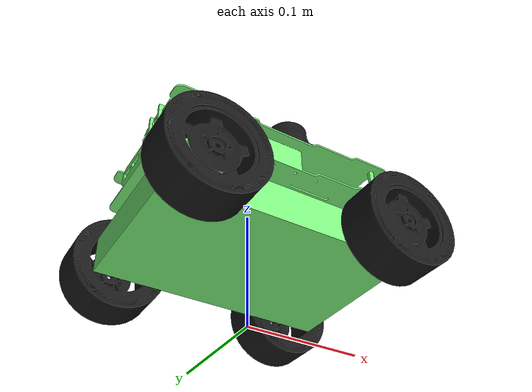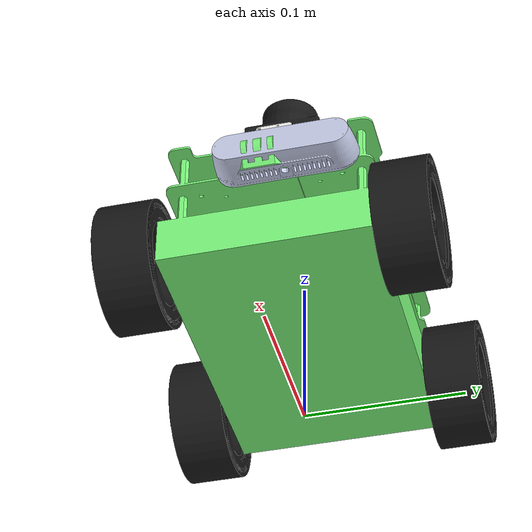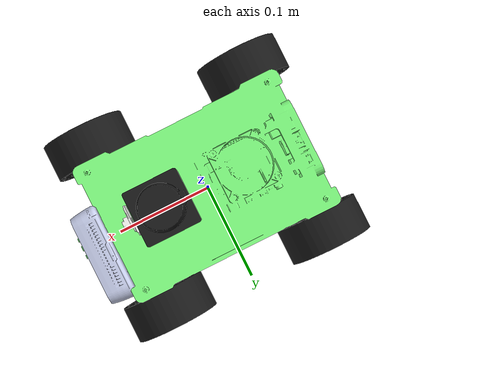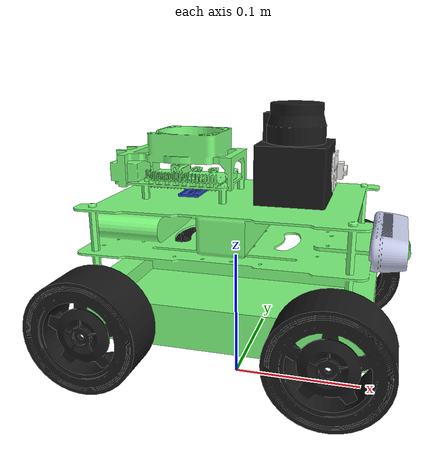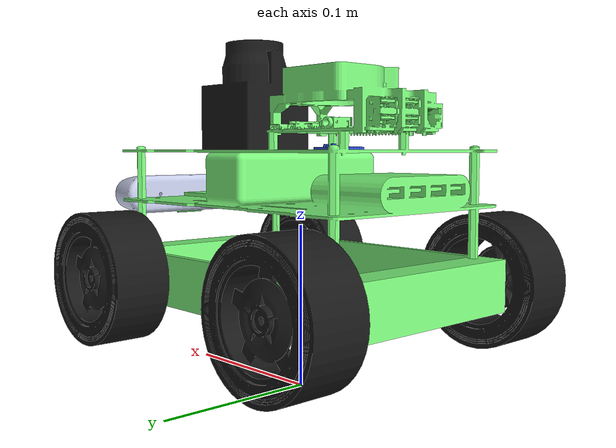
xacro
<?xml version="1.0"?>
<robot xmlns:xacro="http://www.ros.org/wiki/xacro"  name="sucata">

    <xacro:arg name="use_ros2_control" default="true"/>
    <xacro:arg name="sim_mode" default="false"/>

    <xacro:include filename="urdf2.xacro" />

    <xacro:include filename="ros2_control.xacro" />

    <xacro:include filename="lidar.xacro" />

    <xacro:include filename="imu.xacro" />

    <xacro:include filename="depthCamera.xacro" />

    <xacro:include filename="camera.xacro" />

</robot>

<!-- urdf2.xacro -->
<robot
  name="sucata">
  <link name="base_footprint"/>
    <joint name="base_joint" type="fixed">
        <parent link="base_footprint"/>
        <child link="base_link" />
        <origin xyz="0.0014564 0.00032017 0.05608" rpy="0 0 0" />
    </joint>

  <link
    name="base_link">
    <inertial>
      <origin
        xyz="0.0014564 0.00032017 0.02708"
        rpy="0 0 0" />
      <mass
        value="0.29402" />
      <inertia
        ixx="0.00054056"
        ixy="-1.0152E-08"
        ixz="6.2563E-09"
        iyy="0.0012531"
        iyz="1.8536E-10"
        izz="0.0017493" />
    </inertial>
    <visual>
      <origin
        xyz="0 0 0"
        rpy="0 0 0" />
      <geometry>
        <mesh
          filename="package://sucata/meshes/base_link.STL" />
      </geometry>
      <material
        name="verde_claro">
        <color
          rgba="0.5 1.0 0.5 1"/>
      </material>
    </visual>
    <collision>
      <origin
        xyz="0 0 0"
        rpy="0 0 0" />
      <geometry>
        <mesh
          filename="package://sucata/meshes/base_link.STL" />
      </geometry>
    </collision>
  </link>
  <link
    name="rodaFE">
    <inertial>
      <origin
        xyz="4.33708624569817E-13 -0.0116000427495452 3.641063145432E-13"
        rpy="0 0 0" />
      <mass
        value="0.0417534418555908" />
      <inertia
        ixx="2.90386422409949E-05"
        ixy="-9.63351560872344E-17"
        ixz="-1.16755116343788E-16"
        iyy="4.53732000489224E-05"
        iyz="-1.07562778637676E-16"
        izz="2.90386422317585E-05" />
    </inertial>
    <visual>
      <origin
        xyz="0 0 0"
        rpy="0 0 0" />
      <geometry>
        <mesh
          filename="package://sucata/meshes/rodaFE.STL" />
      </geometry>
      <material
        name="preto">
        <color
          rgba="0.1 0.1 0.1 1"/>
      </material>
    </visual>
    <collision>
      <origin
        xyz="0 0 0"
        rpy="0 0 0" />
      <geometry>
        <mesh
          filename="package://sucata/meshes/rodaFE.STL" />
      </geometry>
    </collision>
  </link>
  <joint
    name="roda_FE"
    type="continuous">
    <origin
      xyz="0.0815 0.0973 0.0115"
      rpy="0 0 0" />
    <parent
      link="base_link" />
    <child
      link="rodaFE" />
    <axis
      xyz="0 1 0" />
    <limit
      effort="10"
      velocity="10" />
    <dynamics
      damping="0.1"
      friction="0.1" />
  </joint>
  <link
    name="rodaTE">
    <inertial>
      <origin
        xyz="4.33729441251529E-13 -0.0116000427495452 3.64085497861488E-13"
        rpy="0 0 0" />
      <mass
        value="0.0417534418555908" />
      <inertia
        ixx="2.90386422409949E-05"
        ixy="-9.63357589960055E-17"
        ixz="-1.1675601730821E-16"
        iyy="4.53732000489224E-05"
        iyz="-1.07560295850229E-16"
        izz="2.90386422317585E-05" />
    </inertial>
    <visual>
      <origin
        xyz="0 0 0"
        rpy="0 0 0" />
      <geometry>
        <mesh
          filename="package://sucata/meshes/rodaTE.STL" />
      </geometry>
      <material
        name="preto">
        <color
          rgba="0.1 0.1 0.1 1"/>
      </material>
    </visual>
    <collision>
      <origin
        xyz="0 0 0"
        rpy="0 0 0" />
      <geometry>
        <mesh
          filename="package://sucata/meshes/rodaTE.STL" />
      </geometry>
    </collision>
  </link>
  <joint
    name="roda_TE"
    type="continuous">
    <origin
      xyz="-0.0815 0.0973 0.0115"
      rpy="0 0 0" />
    <parent
      link="base_link" />
    <child
      link="rodaTE" />
    <axis
      xyz="0 1 0" />
    <limit
      effort="10"
      velocity="10" />
    <dynamics
      damping="0.1"
      friction="0.1" />
  </joint>
  <link
    name="rodaFD">
    <inertial>
      <origin
        xyz="-4.33708624569817E-13 0.0116000427495451 3.64003965858117E-13"
        rpy="0 0 0" />
      <mass
        value="0.0417534418555909" />
      <inertia
        ixx="2.90386422409949E-05"
        ixy="-9.63348726903862E-17"
        ixz="1.16761894791001E-16"
        iyy="4.53732000489225E-05"
        iyz="1.07446973492785E-16"
        izz="2.90386422317586E-05" />
    </inertial>
    <visual>
      <origin
        xyz="0 0 0"
        rpy="0 0 0" />
      <geometry>
        <mesh
          filename="package://sucata/meshes/rodaFD.STL" />
      </geometry>
      <material
        name="preto">
        <color
          rgba="0.1 0.1 0.1 1"/>
      </material>
    </visual>
    <collision>
      <origin
        xyz="0 0 0"
        rpy="0 0 0" />
      <geometry>
        <mesh
          filename="package://sucata/meshes/rodaFD.STL" />
      </geometry>
    </collision>
  </link>
  <joint
    name="roda_FD"
    type="continuous">
    <origin
      xyz="0.0814999999999993 -0.0973000000000006 0.0115000000000003"
      rpy="0 0 0" />
    <parent
      link="base_link" />
    <child
      link="rodaFD" />
    <axis
      xyz="0 1 0" />
    <limit
      effort="10"
      velocity="10" />
    <dynamics
      damping="0.1"
      friction="0.1" />
  </joint>
  <link
    name="rodaTD">
    <inertial>
      <origin
        xyz="-4.33729441251529E-13 0.0116000427495451 3.64019578369401E-13"
        rpy="0 0 0" />
      <mass
        value="0.0417534418555909" />
      <inertia
        ixx="2.9038642240995E-05"
        ixy="-9.63350567825533E-17"
        ixz="1.16754828991177E-16"
        iyy="4.53732000489225E-05"
        iyz="1.07446496399349E-16"
        izz="2.90386422317586E-05" />
    </inertial>
    <visual>
      <origin
        xyz="0 0 0"
        rpy="0 0 0" />
      <geometry>
        <mesh
          filename="package://sucata/meshes/rodaTD.STL" />
      </geometry>
      <material
        name="preto">
        <color
          rgba="0.1 0.1 0.1 1"/>
      </material>
    </visual>
    <collision>
      <origin
        xyz="0 0 0"
        rpy="0 0 0" />
      <geometry>
        <mesh
          filename="package://sucata/meshes/rodaTD.STL" />
      </geometry>
    </collision>
  </link>
  <joint
    name="roda_TD"
    type="continuous">
    <origin
      xyz="-0.0815 -0.0973 0.0115"
      rpy="0 0 0" />
    <parent
      link="base_link" />
    <child
      link="rodaTD" />
    <axis
      xyz="0 1 0" />
    <limit
      effort="10"
      velocity="10" />
    <dynamics
      damping="0.1"
      friction="0.1" />
  </joint>
</robot>

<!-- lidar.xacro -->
<robot xmlns:xacro="http://www.ros.org/wiki/xacro" >

    <link
    name="lidar">
    <inertial>
      <origin
        xyz="-9.18606166123576E-05 -4.20244776477841E-11 0.0287457324561401"
        rpy="0 0 0" />
      <mass
        value="0.136132248882766" />
      <inertia
        ixx="6.89403444506094E-05"
        ixy="-1.08297193917411E-13"
        ixz="2.9341823822417E-07"
        iyy="6.92016796483044E-05"
        iyz="1.54668485205633E-13"
        izz="4.93693267811336E-05" />
    </inertial>
    <visual>
      <origin
        xyz="0 0 0"
        rpy="0 0 0" />
      <geometry>
        <mesh
          filename="package://sucata/meshes/lidar_link.STL" />
      </geometry>
      <material name="preto">
        <color rgba="0.1 0.1 0.1 1"/>
      </material>
    </visual>
    <collision>
      <origin
        xyz="0 0 0"
        rpy="0 0 0" />
      <geometry>
        <mesh
          filename="package://sucata/meshes/lidar_link.STL" />
      </geometry>
    </collision>
  </link>
  <joint
    name="lidar_joint"
    type="fixed">
    <origin
      xyz="0.042054 0.00016264 0.09"
      rpy="0 0 0" />
    <parent
      link="base_link" />
    <child
      link="lidar" />
    <axis
      xyz="0 0 0" />
    <limit
      effort="10"
      velocity="10" />
  </joint>

    <gazebo reference="lidar">
        <material>Gazebo/Black</material>

        <sensor name="laser" type="gpu_lidar">
            <pose> 0 0 0.06 0 0 0 </pose>
            <visualize>true</visualize>
            <update_rate>30</update_rate>
            <lidar>
                <scan>
                    <horizontal>
                        <samples>682</samples>
                        <min_angle>-2.094</min_angle>
                        <max_angle>2.094</max_angle>
                    </horizontal>
                </scan>
                <range>
                    <min>0.06</min>
                    <max>10.0</max>
                </range>
            </lidar>

            <topic>scan</topic>
            <gz_frame_id>lidar</gz_frame_id>
        </sensor>
    </gazebo>

</robot>

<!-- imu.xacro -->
<robot xmlns:xacro="http://www.ros.org/wiki/xacro" >

    <link
    name="imu">
    <inertial>
      <origin
        xyz="1.58927283510988E-05 9.32559180236298E-05 0.000878239070510656"
        rpy="0 0 0" />
      <mass
        value="0.000641531141315228" />
      <inertia
        ixx="3.17041200198106E-08"
        ixy="1.24863172344468E-11"
        ixz="-4.01457310722804E-14"
        iyy="1.18309245142538E-08"
        iyz="-1.71325876343045E-15"
        izz="4.3260264266368E-08" />
    </inertial>
    <visual>
      <origin
        xyz="0 0 0"
        rpy="0 0 0" />
      <geometry>
        <mesh
          filename="package://sucata/meshes/imu_link.STL" />
      </geometry>
      <material
        name="">
        <color
          rgba="0.176470588235294 0.290196078431373 0.8 1" />
      </material>
    </visual>
    <collision>
      <origin
        xyz="0 0 0"
        rpy="0 0 0" />
      <geometry>
        <mesh
          filename="package://sucata/meshes/imu_link.STL" />
      </geometry>
    </collision>
  </link>
  <joint
    name="imu_joint"
    type="fixed">
    <origin
      xyz="-0.034597 0 0.09"
      rpy="0 0 0" />
    <parent
      link="base_link" />
    <child
      link="imu" />
    <axis
      xyz="0 0 0" />
  </joint>

    <gazebo reference="imu">
        <material>Gazebo/Red</material>

        <sensor name="imu_sensor" type="imu">
            <always_on>1</always_on>
            <update_rate>100</update_rate>
            <visualize>true</visualize>
            <topic>imu</topic>
            <plugin filename="gz-sim-imu-system"
                name="gz::sim::systems::Imu">

            </plugin>
            <gz_frame_id>imu</gz_frame_id>
        </sensor>

    </gazebo>

</robot>

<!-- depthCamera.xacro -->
<robot xmlns:xacro="http://www.ros.org/wiki/xacro">

  <xacro:property name="M_PI" value="3.1415926535897931"/>

  <link name="depth_link">
    <inertial>
      <origin
        xyz="0.00165361128202401 -0.00269639697644685 0.0205430007114401"
        rpy="0 0 0" />
      <mass
        value="0.148684888659451" />
      <inertia
        ixx="0.000383418101917362"
        ixy="4.9551593389992E-07"
        ixz="-1.97562143140798E-08"
        iyy="2.24167306709295E-05"
        iyz="4.99136040563028E-09"
        izz="0.000390815698366695" />
    </inertial>
    <visual>
      <origin
        xyz="0 0 0"
        rpy="0 0 0" />
      <geometry>
        <mesh
          filename="package://sucata/meshes/depthCamera_link.STL" />
      </geometry>
      <material
        name="">
        <color
          rgba="0.792156862745098 0.819607843137255 0.933333333333333 1" />
      </material>
    </visual>
    <collision>
      <origin
        xyz="0 0 0"
        rpy="0 0 0" />
      <geometry>
        <mesh
          filename="package://sucata/meshes/depthCamera_link.STL" />
      </geometry>
    </collision>
  </link>

  <joint
    name="depth_joint"
    type="fixed">
    <origin
      xyz="0.11915 0.0023485 0.060264"
      rpy="0 0 0" />
    <parent
      link="base_link" />
    <child
      link="depth_link" />
    <axis
      xyz="0 0 0" />
  </joint>

  <gazebo reference="depth_link">
    <material>Gazebo/Red</material>

    <sensor name="xtion_depth" type="depth">
      <pose>0 0 0 0 0 0</pose>
      <always_on>true</always_on>
      <update_rate>30.0</update_rate>
      <visualize>true</visualize>
      <camera>
        <horizontal_fov>1.01229</horizontal_fov>
        <image>
          <width>640</width>
          <height>480</height>
          <format>R8G8B8</format>
        </image>
        <clip>
          <near>0.05</near>
          <far>10.0</far>
        </clip>
        <noise>
          <type>gaussian</type>
          <mean>0.0</mean>
          <stddev>0.007</stddev>
        </noise>
      </camera>
      <topic>/depth</topic>
      <gz_frame_id>depth_link</gz_frame_id>
    </sensor>
  </gazebo>
</robot>

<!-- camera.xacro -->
<robot xmlns:xacro="http://www.ros.org/wiki/xacro">

  <xacro:property name="M_PI" value="3.1415926535897931"/>

  <link
    name="camera_link">
    <inertial>
      <origin
        xyz="-0.0063041 0.00019066 -1.4707E-05"
        rpy="0 0 0" />
      <mass
        value="0.0016618" />
      <inertia
        ixx="6.8075E-08"
        ixy="4.9904E-11"
        ixz="3.1064E-13"
        iyy="4.0624E-08"
        iyz="-1.8731E-10"
        izz="2.9619E-08" />
    </inertial>
    <visual>
      <origin
        xyz="0 0 0"
        rpy="0 0 0" />
      <geometry>
        <mesh
          filename="package://sucata/meshes/camera_link.STL" />
      </geometry>
      <material
        name="">
        <color
          rgba="0.96471 0.96471 0.95294 1" />
      </material>
    </visual>
    <collision>
      <origin
        xyz="0 0 0"
        rpy="0 0 0" />
      <geometry>
        <mesh
          filename="package://sucata/meshes/camera_link.STL" />
      </geometry>
    </collision>
  </link>
  <joint
    name="camera_joint"
    type="fixed">
    <origin
      xyz="0.078124 -0.00096168 0.11303"
      rpy="0 0 0" />
    <parent
      link="base_link" />
    <child
      link="camera_link" />
    <axis
      xyz="0 0 0" />
  </joint>

    <gazebo reference="camera_link">
        <material>Gazebo/Red</material>

        <sensor name="cameraV3" type="camera">
            <pose> 0 0 0 0 0 0 </pose>
            <visualize>true</visualize>
            <update_rate>10</update_rate>
            <camera>
                <horizontal_fov>1.089</horizontal_fov>
                <image>
                    <format>R8G8B8</format> <!-- Changed from B8G8R8 -->
                    <width>640</width>
                    <height>480</height>
                </image>
                <clip>
                    <near>0.05</near>
                    <far>8.0</far>
                </clip>
            </camera>
            <topic>/camera/rpi/image_raw</topic>
            <gz_frame_id>camera_link</gz_frame_id>
        </sensor>
    </gazebo>
</robot>
